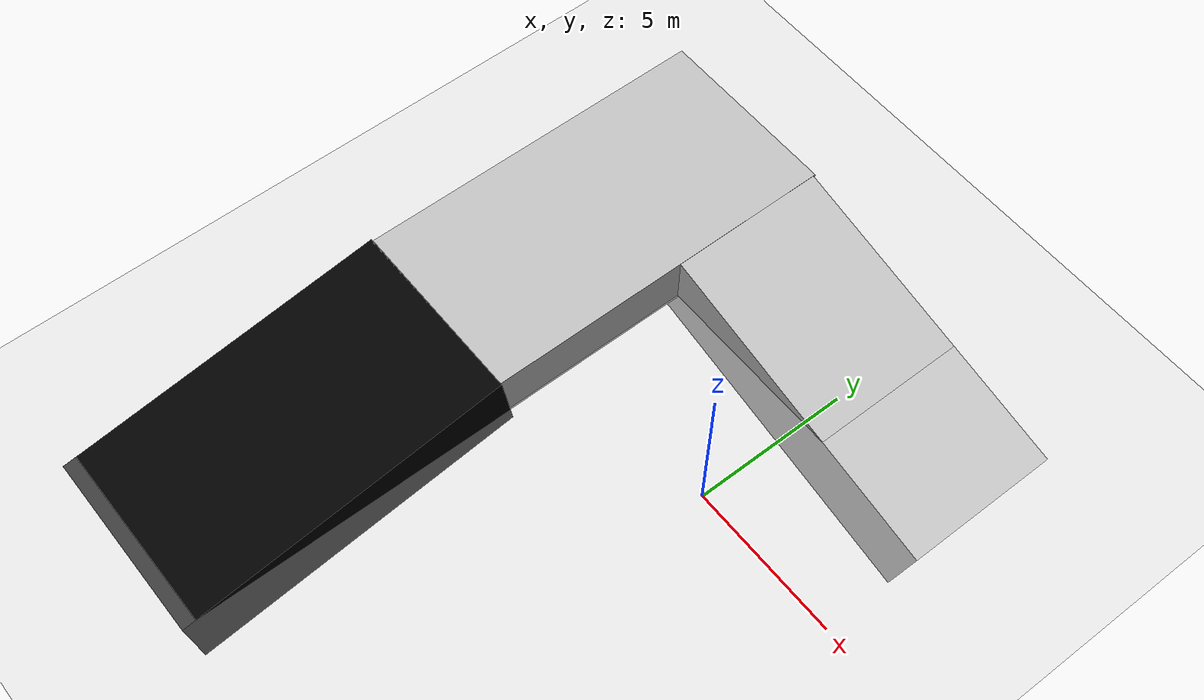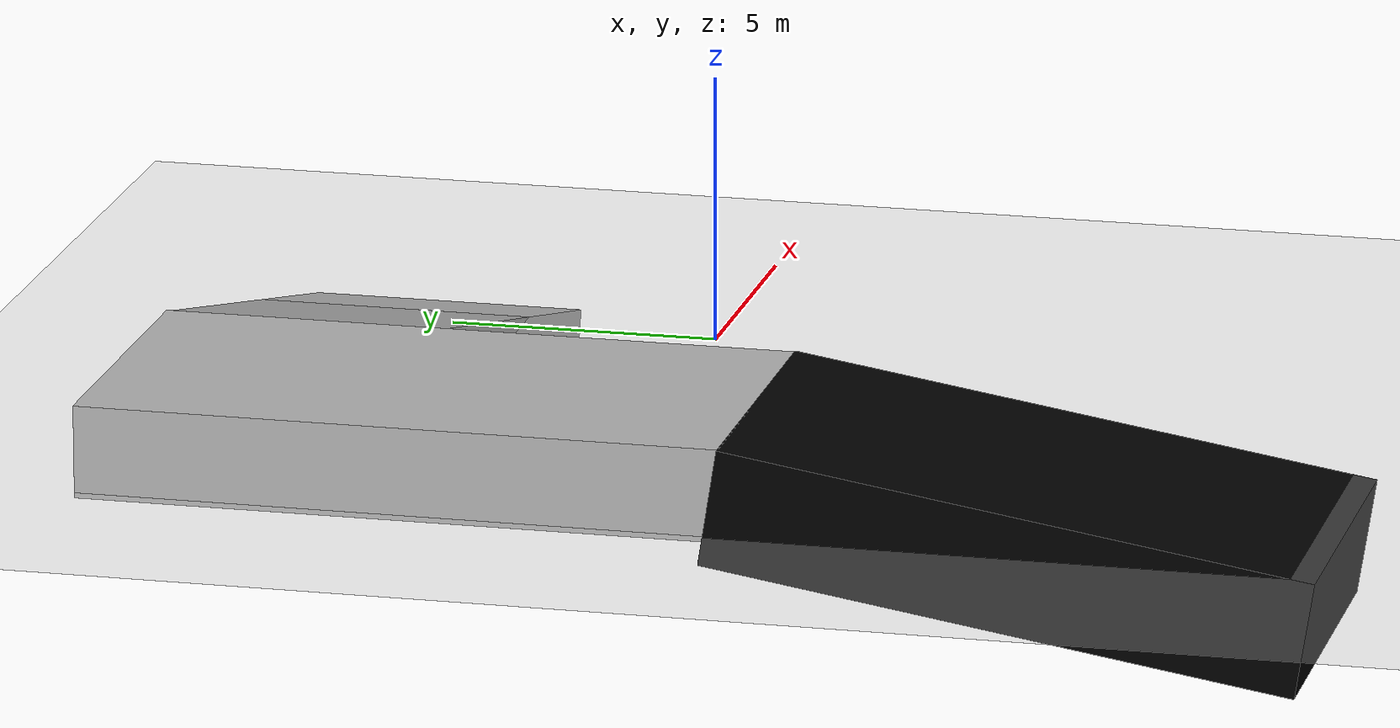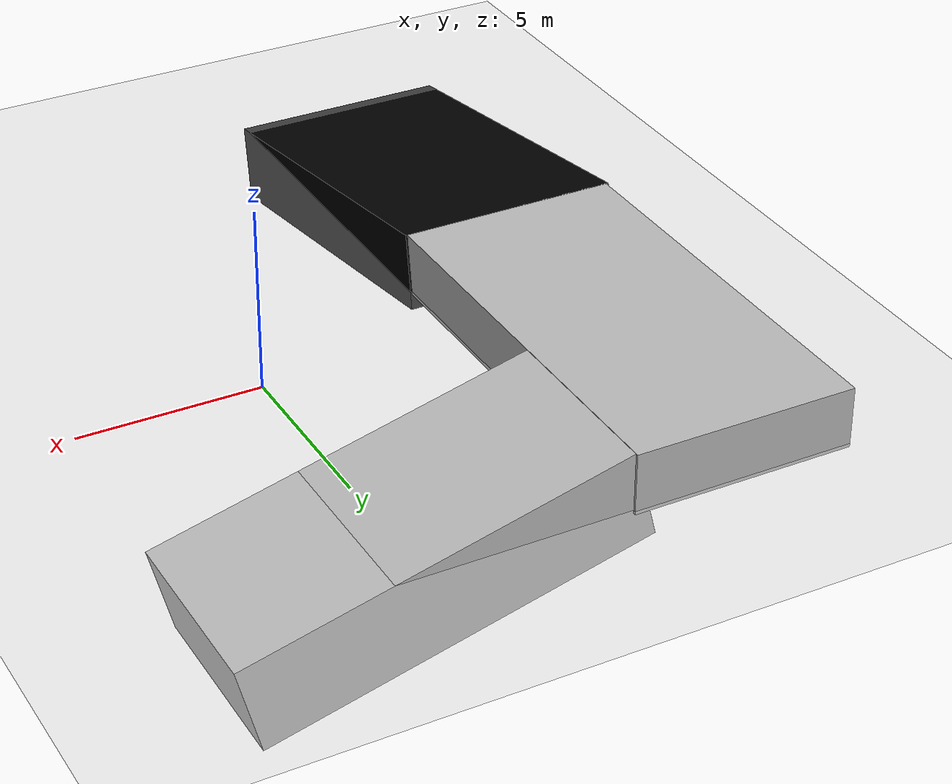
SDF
<sdf version="1.7">
 <world name="default">
  <light name="sun" type="directional">
   <pose>0 0 10 0 -0 0</pose>
   <diffuse>0.8 0.8 0.8 1</diffuse>
   <specular>0.2 0.2 0.2 1</specular>
   <attenuation>
    <range>1000</range>
    <constant>0.9</constant>
    <linear>0.01</linear>
    <quadratic>0.001</quadratic>
   </attenuation>
   <direction>-0.5 0.1 -0.9</direction>
   <spot><inner_angle>0</inner_angle><outer_angle>0</outer_angle><falloff>0</falloff></spot>
  </light>
  <model name="ground_plane">
   <static>1</static>
   <link name="link">
    <collision name="collision">
     <geometry><plane><normal>0 0 1</normal><size>100 100</size></plane></geometry>
     <surface><friction><ode><mu>100</mu><mu2>50</mu2></ode></friction></surface>
    </collision>
    <visual name="visual">
     <cast_shadows>0</cast_shadows>
     <geometry><plane><normal>0 0 1</normal><size>100 100</size></plane></geometry>
     <material>
      <script><uri>file://media/materials/scripts/gazebo.material</uri><name>Gazebo/Grey</name></script>
     </material>
    </visual>
   </link>
  </model>
  <gravity>0 0 -9.8</gravity>
  <magnetic_field>6e-06 2.3e-05 -4.2e-05</magnetic_field>
  <atmosphere type="adiabatic"/>
  <physics type="ode">
   <max_step_size>0.001</max_step_size>
   <real_time_factor>1</real_time_factor>
   <real_time_update_rate>1000</real_time_update_rate>
  </physics>
  <scene><ambient>0.4 0.4 0.4 1</ambient><background>0.7 0.7 0.7 1</background><shadows>1</shadows></scene>
  <audio><device>default</device></audio>
  <spherical_coordinates>
   <surface_model>EARTH_WGS84</surface_model>
   <latitude_deg>0</latitude_deg>
   <longitude_deg>0</longitude_deg>
   <elevation>0</elevation>
   <heading_deg>0</heading_deg>
  </spherical_coordinates>
  <model name="slope1_0">
   <link name="slope_down">
    <pose>5.93381 0.005402 -0.964279 0 0.248274 0</pose>
    <inertial>
     <inertia><ixx>0</ixx><ixy>0</ixy><ixz>0</ixz><iyy>0</iyy><iyz>0</iyz><izz>0</izz></inertia>
     <mass>0</mass>
    </inertial>
    <visual name="visual">
     <geometry><box><size>10.6012 5.12132 2.52711</size></box></geometry>
     <material><shader type="pixel"/></material>
    </visual>
    <collision name="collision">
     <geometry><box><size>10.6012 5.12132 2.52711</size></box></geometry>
     <surface>
      <friction>
       <ode><mu>1</mu><mu2>1</mu2><fdir1>0 0 0</fdir1><slip1>0</slip1><slip2>0</slip2></ode>
       <torsional>
        <coefficient>1</coefficient>
        <patch_radius>0</patch_radius>
        <surface_radius>0</surface_radius>
        <use_patch_radius>1</use_patch_radius>
        <ode><slip>0</slip></ode>
       </torsional>
      </friction>
      <bounce><restitution_coefficient>0</restitution_coefficient><threshold>1e+06</threshold></bounce>
      <contact>
       <collide_without_contact>0</collide_without_contact>
       <collide_without_contact_bitmask>1</collide_without_contact_bitmask>
       <collide_bitmask>1</collide_bitmask>
       <ode>
        <soft_cfm>0</soft_cfm>
        <soft_erp>0.2</soft_erp>
        <kp>1e+13</kp>
        <kd>1</kd>
        <max_vel>0.01</max_vel>
        <min_depth>0</min_depth>
       </ode>
       <bullet>
        <split_impulse>1</split_impulse>
        <split_impulse_penetration_threshold>-0.01</split_impulse_penetration_threshold>
        <soft_cfm>0</soft_cfm>
        <soft_erp>0.2</soft_erp>
        <kp>1e+13</kp>
        <kd>1</kd>
       </bullet>
      </contact>
     </surface>
    </collision>
   </link>
   <link name="slope_down_clone">
    <pose>-1.94579 -14.114 -0.316046 -0 0.156297 -1.57224</pose>
    <inertial>
     <inertia><ixx>0</ixx><ixy>0</ixy><ixz>0</ixz><iyy>0</iyy><iyz>0</iyz><izz>0</izz></inertia>
     <mass>0</mass>
    </inertial>
    <visual name="visual">
     <geometry><box><size>10.7052 6.21594 2.1332</size></box></geometry>
     <material>
      <shader type="pixel"><normal_map>__default__</normal_map></shader>
      <script><name>ModelPreview_1::slope_down_clone::visual_MATERIAL_</name><uri>__default__</uri></script>
      <ambient>0 0 0 1</ambient>
      <diffuse>0 0 0 1</diffuse>
      <specular>0 0 0 1</specular>
      <emissive>0 0 0 1</emissive>
     </material>
    </visual>
    <collision name="collision">
     <geometry><box><size>10.7052 6.21594 2.1332</size></box></geometry>
     <surface>
      <friction>
       <ode><mu>1</mu><mu2>1</mu2><fdir1>0 0 0</fdir1><slip1>0</slip1><slip2>0</slip2></ode>
       <torsional>
        <coefficient>1</coefficient>
        <patch_radius>0</patch_radius>
        <surface_radius>0</surface_radius>
        <use_patch_radius>1</use_patch_radius>
        <ode><slip>0</slip></ode>
       </torsional>
      </friction>
      <bounce><restitution_coefficient>0</restitution_coefficient><threshold>1e+06</threshold></bounce>
      <contact>
       <collide_without_contact>0</collide_without_contact>
       <collide_without_contact_bitmask>1</collide_without_contact_bitmask>
       <collide_bitmask>1</collide_bitmask>
       <ode>
        <soft_cfm>0</soft_cfm>
        <soft_erp>0.2</soft_erp>
        <kp>1e+13</kp>
        <kd>1</kd>
        <max_vel>0.01</max_vel>
        <min_depth>0</min_depth>
       </ode>
       <bullet>
        <split_impulse>1</split_impulse>
        <split_impulse_penetration_threshold>-0.01</split_impulse_penetration_threshold>
        <soft_cfm>0</soft_cfm>
        <soft_erp>0.2</soft_erp>
        <kp>1e+13</kp>
        <kd>1</kd>
       </bullet>
      </contact>
     </surface>
    </collision>
   </link>
   <link name="slope_zero">
    <pose>-1.92902 -3.18844 0.7221 0 -0 0</pose>
    <inertial>
     <inertia><ixx>0</ixx><ixy>0</ixy><ixz>0</ixz><iyy>0</iyy><iyz>0</iyz><izz>0</izz></inertia>
     <mass>0</mass>
    </inertial>
    <visual name="visual">
     <geometry><box><size>6.10024 11.649 1.69097</size></box></geometry>
     <material><shader type="pixel"><normal_map>__default__</normal_map></shader></material>
    </visual>
    <collision name="collision">
     <geometry><box><size>6.10024 11.649 1.69097</size></box></geometry>
     <surface>
      <friction>
       <ode><mu>1</mu><mu2>1</mu2><fdir1>0 0 0</fdir1><slip1>0</slip1><slip2>0</slip2></ode>
       <torsional>
        <coefficient>1</coefficient>
        <patch_radius>0</patch_radius>
        <surface_radius>0</surface_radius>
        <use_patch_radius>1</use_patch_radius>
        <ode><slip>0</slip></ode>
       </torsional>
      </friction>
      <bounce><restitution_coefficient>0</restitution_coefficient><threshold>1e+06</threshold></bounce>
      <contact>
       <collide_without_contact>0</collide_without_contact>
       <collide_without_contact_bitmask>1</collide_without_contact_bitmask>
       <collide_bitmask>1</collide_bitmask>
       <ode>
        <soft_cfm>0</soft_cfm>
        <soft_erp>0.2</soft_erp>
        <kp>1e+13</kp>
        <kd>1</kd>
        <max_vel>0.01</max_vel>
        <min_depth>0</min_depth>
       </ode>
       <bullet>
        <split_impulse>1</split_impulse>
        <split_impulse_penetration_threshold>-0.01</split_impulse_penetration_threshold>
        <soft_cfm>0</soft_cfm>
        <soft_erp>0.2</soft_erp>
        <kp>1e+13</kp>
        <kd>1</kd>
       </bullet>
      </contact>
     </surface>
    </collision>
   </link>
   <static>1</static>
   <pose>-6.61341 6.28796 0 0 -0 0</pose>
  </model>
 </world>
</sdf>
